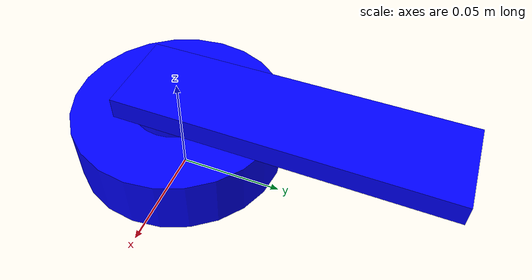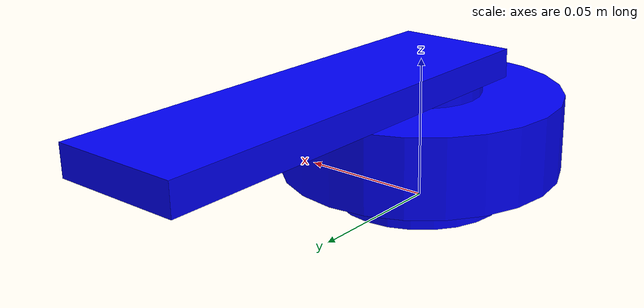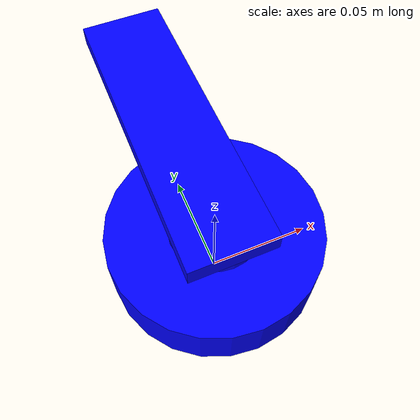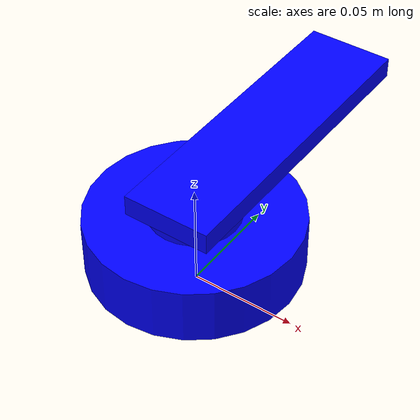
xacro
<?xml version="1.0"?>
<robot xmlns:xacro="http://www.ros.org/wiki/xacro" name="myactuator_ros2_control_urdf">

   <!-- Import MyActuator description -->
   <xacro:include filename="$(find myactuator_description)/urdf/myactuator.urdf.xacro" />

  <!-- Import ros2_control description -->
  <xacro:include filename="$(find myactuator_ros2_control)/xacro/myactuator.ros2_control.xacro" />
  <xacro:myactuator_ros2_control name="motor_controller" ifname="can0" />

</robot>

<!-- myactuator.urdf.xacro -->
<robot xmlns:xacro="http://www.ros.org/wiki/xacro" name="myactuator_base_urdf">

   <!-- Import Common properties-->
   <xacro:include filename="$(find myactuator_description)/urdf/common_properties.xacro" />

  <!-- Import RMD X8-Pro macro -->
  <xacro:include filename="$(find myactuator_description)/urdf/rmd_x8_pro.urdf.xacro" />

  <link name="base_link"/>

  <joint name="base_body_joint" type="fixed">
    <parent link="base_link" />
    <child link="body_link" />
    <origin xyz="0 0 0.012" rpy="0 0 0" />
  </joint>

</robot>

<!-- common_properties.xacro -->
<robot xmlns:xacro="http://www.ros.org/wiki/xacro">

    <material name="silver">
        <color rgba="0.700 0.700 0.700 1.000" />
    </material>
    <material name="black">
        <color rgba="0 0 0 1" />
    </material>
    <material name="grey">
        <color rgba="0.8 0.8 0.8 1" />
    </material>
    <material name="orange">
        <color rgba="1 0.6 0 1" />
    </material>
    <material name="blue">
        <color rgba="0 0 1 1" />
    </material>
    <material name="green">
        <color rgba="0 1 0 1" />
    </material>
    <material name="white">
        <color rgba="1 1 1 1" />
    </material>

    <material name="red">
        <color rgba="1 0 0 1" />
    </material>

    <xacro:macro name="box_inertia" params="m l w h xyz rpy">
        <inertial>
            <origin xyz="${xyz}" rpy="${rpy}" />
            <mass value="${m}" />
            <inertia ixx="${(m/12) * (h*h + l*l)}" ixy="0" ixz="0"
                iyy="${(m/12) * (w*w + l*l)}" iyz="0"
                izz="${(m/12) * (w*w + h*h)}" />
        </inertial>
    </xacro:macro>

    <xacro:macro name="cylinder_inertia" params="m r h xyz rpy">
        <inertial>
            <origin xyz="${xyz}" rpy="${rpy}" />
            <mass value="${m}" />
            <inertia ixx="${(m/12) * (3*r*r + h*h)}" ixy="0" ixz="0"
                iyy="${(m/12) * (3*r*r + h*h)}" iyz="0"
                izz="${(m/2) * (r*r)}" />
        </inertial>
    </xacro:macro>

</robot>

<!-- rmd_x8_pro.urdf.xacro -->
<robot xmlns:xacro="http://www.ros.org/wiki/xacro">

    <link name="body_link">
        <visual>
            <geometry>
                <cylinder radius="${0.098/2}" length="0.027" />
            </geometry>
            <origin xyz="0 0 ${0.027/2}" rpy="0 0 0" />
            <material name="blue" />
        </visual>
        <collision>
            <geometry>
                <cylinder radius="${0.098/2}" length="0.027" />
            </geometry>
            <origin xyz="0 0 ${0.027/2}" rpy="0 0 0" />
        </collision>
        <xacro:cylinder_inertia m="0.600" r="${0.098/2}"
            h="0.027"
            xyz="0 0 ${0.027/2}" rpy="0 0 0" />
    </link>

    <link name="cover_link">
        <visual>
            <geometry>
                <cylinder radius="${0.06/2}" length="0.012" />
            </geometry>
            <origin xyz="0 0 -${0.012/2}" rpy="0 0 0" />
            <material name="blue" />
        </visual>
        <collision>
            <geometry>
                <cylinder radius="${0.06/2}" length="0.012" />
            </geometry>
            <origin xyz="0 0 -${0.012/2}" rpy="0 0 0" />
        </collision>
        <xacro:cylinder_inertia m="0.01" r="${0.06/2}"
            h="0.012"
            xyz="0 0 -${0.012/2}" rpy="0 0 0" />
    </link>

    <link name="shaft_link">
        <visual>
            <geometry>
                <cylinder radius="${0.042/2}" length="0.0035" />
            </geometry>
            <origin xyz="0 0 ${0.0035/2}" rpy="0 0 0" />
            <material name="blue" />
        </visual>
        <collision>
            <geometry>
                <cylinder radius="${0.098/2}" length="0.0035" />
            </geometry>
            <origin xyz="0 0 ${0.0035/2}" rpy="0 0 0" />
        </collision>
        <xacro:cylinder_inertia m="0.1" r="${0.098/2}"
            h="0.0035"
            xyz="0 0 ${0.0035/2}" rpy="0 0 0" />
    </link>

    <link name="arm_link">
        <visual>
            <geometry>
                <box size="0.042 0.15 0.01" />
            </geometry>
            <origin xyz="0 ${(0.15/2)-(0.042/2)} ${0.01/2}" rpy="0 0 0" />
            <material name="blue" />
        </visual>
        <collision>
            <geometry>
                <box size="0.042 0.15 0.01" />
            </geometry>
            <origin xyz="0 ${(0.15/2)-(0.042/2)} ${0.01/2}" rpy="0 0 0" />
        </collision>
        <xacro:box_inertia m="0.2" l="0.042" w="0.15" h="0.01" xyz="0 ${(0.15/2)-(0.042/2)} ${0.01/2}" rpy="0 0 0" />
    </link>

    <joint name="body_cover_joint" type="fixed">
        <parent link="body_link" />
        <child link="cover_link" />
        <origin xyz="0 0 0" rpy="0 0 0" />
    </joint>

    <joint name="body_shaft_joint" type="continuous">
        <parent link="body_link" />
        <child link="shaft_link" />
        <origin xyz="0 0 0.027" rpy="0 0 0" />
        <axis xyz="0 0 1" />
    </joint>

    <joint name="shaft_arm_joint" type="fixed">
        <parent link="shaft_link" />
        <child link="arm_link" />
        <origin xyz="0 0 0.0035" rpy="0 0 0" />
    </joint>
</robot>
